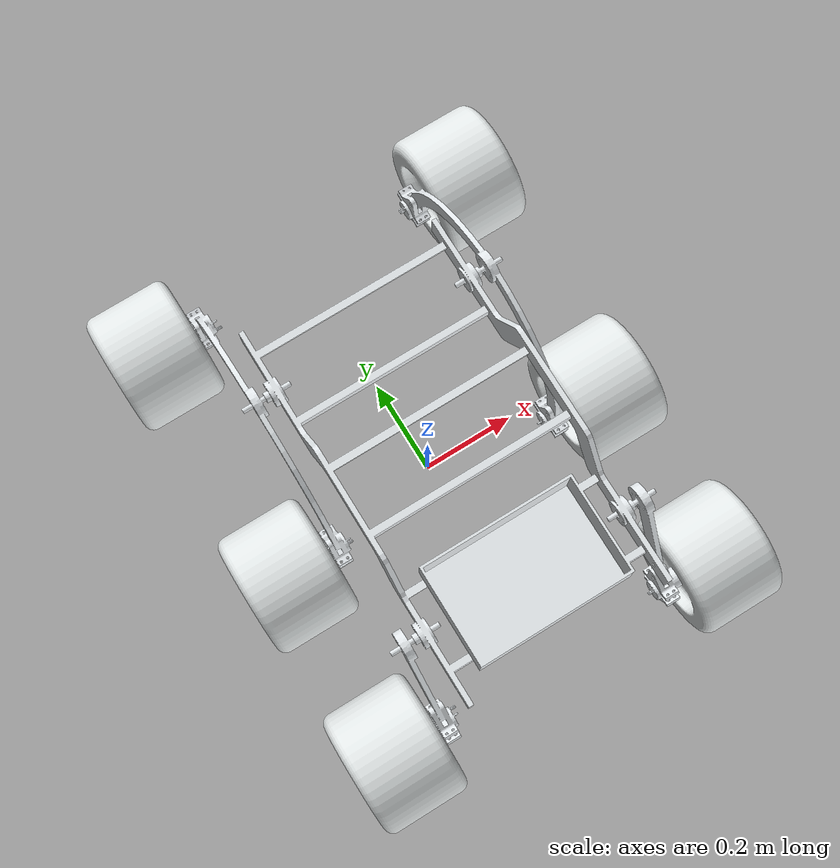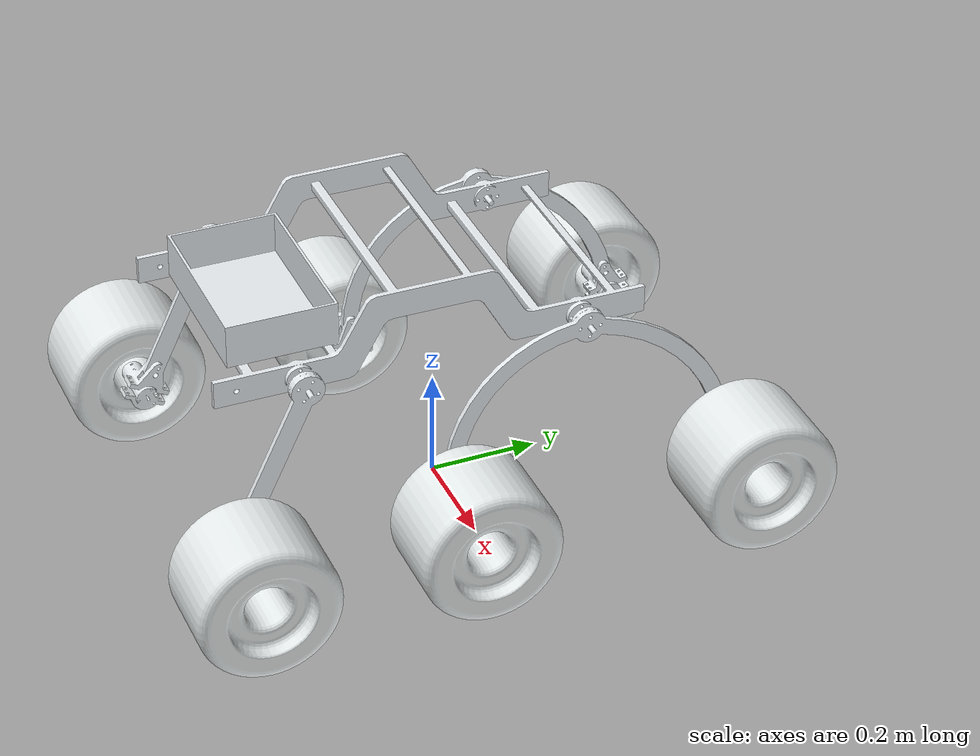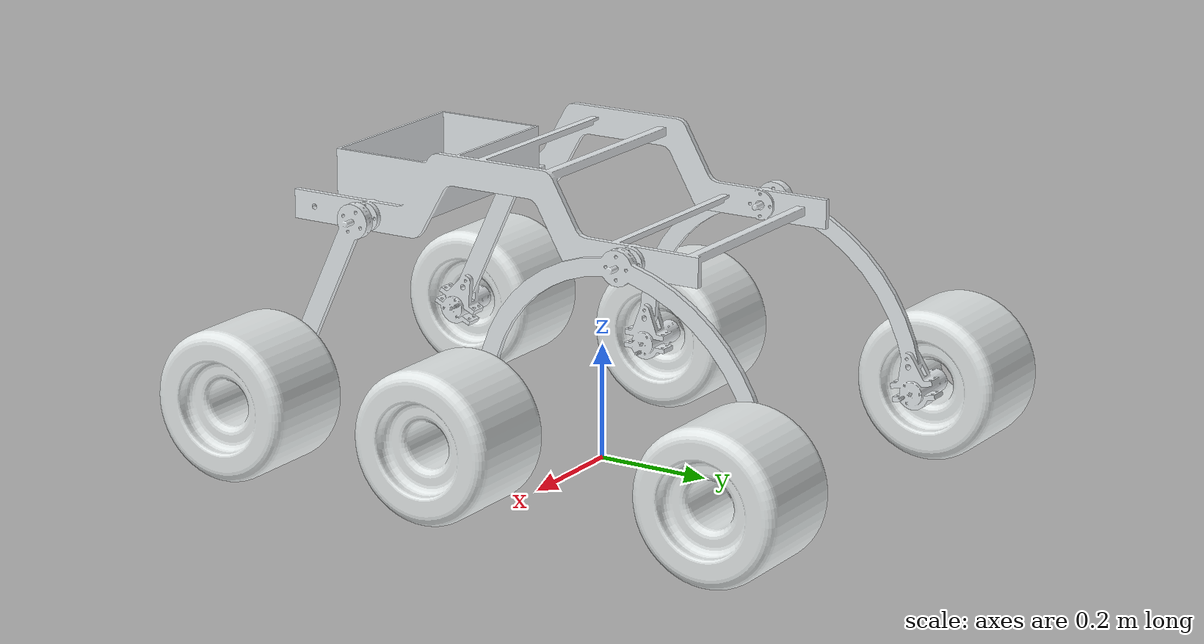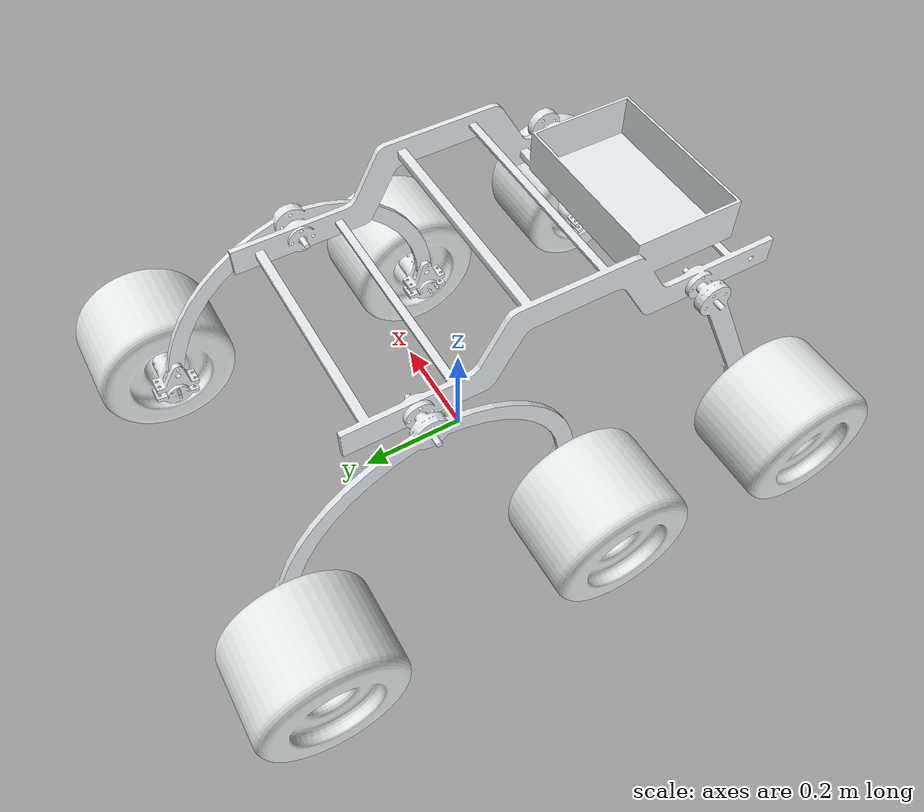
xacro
<?xml version="1.0" ?>
<!-- |    This document was autogenerated by xacro from robot6.urdf                    | -->
<!-- |    EDITING THIS FILE BY HAND IS NOT RECOMMENDED                                 | -->
<!-- |    This document was autogenerated by xacro from robot2.xacro                   | -->
<!-- |    EDITING THIS FILE BY HAND IS NOT RECOMMENDED                                 | -->
<!-- |    This document was autogenerated by xacro from robot2.urdf                    | -->
<!-- |    EDITING THIS FILE BY HAND IS NOT RECOMMENDED                                 | -->
<!-- |    This document was autogenerated by xacro from diff_wheeled_robot.xacro       | -->
<!-- |    EDITING THIS FILE BY HAND IS NOT RECOMMENDED                                 | -->
<robot name="robot1" xmlns:xacro="http://www.ros.org/wiki/xacro">
  <link name="base_link">
    <inertial>
      <origin rpy="0 0 0" xyz="-0.000800600263010614 -0.11860258145137 0.455394457326262"/>
      <mass value="4.27804006349508"/>
      <inertia ixx="0.223279268967413" ixy="-0.000727461158529111" ixz="-3.35208728745676E-06" iyy="0.142337282720164" iyz="6.97566155290899E-05" izz="0.349709434624979"/>
    </inertial>
    <visual>
      <origin rpy="0 0 0" xyz="0 0 0"/>
      <geometry>
        <mesh filename="package://robot1/meshes/base_link.stl"/>
      </geometry>
      <material name="">
        <color rgba="0.898039215686275 0.917647058823529 0.929411764705882 1"/>
      </material>
    </visual>
    <collision>
      <origin rpy="0 0 0" xyz="0 0 0"/>
      <geometry>
        <mesh filename="package://robot1/meshes/base_link.stl"/>
      </geometry>
    </collision>
  </link>
  <gazebo reference="base_link">
    <material>Gazebo/Grey</material>
  </gazebo>
  <link name="bogie_left">
    <inertial>
      <origin rpy="0 0 0" xyz="0.00360195091703333 -0.156872819581089 -0.0770599329146603"/>
      <mass value="1.54434655072793"/>
      <inertia ixx="0.0238244757958653" ixy="0.00118304598138277" ixz="6.87987185265187E-05" iyy="0.0646733940389408" iyz="-0.00141276494033457" izz="0.0874730986459172"/>
    </inertial>
    <visual>
      <origin rpy="0 0 0" xyz="0 0 0"/>
      <geometry>
        <mesh filename="package://robot1/meshes/bogie_left.stl"/>
      </geometry>
      <material name="">
        <color rgba="0.898039215686275 0.917647058823529 0.929411764705882 1"/>
      </material>
    </visual>
    <collision>
      <origin rpy="0 0 0" xyz="0 0 0"/>
      <geometry>
        <mesh filename="package://robot1/meshes/bogie_left.stl"/>
      </geometry>
    </collision>
  </link>
  <joint name="joint_bogie_left" type="revolute">
    <origin rpy="1.5708 0.0053459 1.5708" xyz="-0.176 0.187 0.42252"/>
    <parent link="base_link"/>
    <child link="bogie_left"/>
    <axis xyz="0 0 1"/>
    <limit effort="1000" lower="0.0" upper="0.0" velocity="0.5"/>
  </joint>
  <gazebo reference="bogie_left">
    <material>Gazebo/FlatBlack</material>
  </gazebo>
  <link name="L4">
    <inertial>
      <origin rpy="0 0 0" xyz="-0.0908549897031922 3.60822483003176E-16 -1.88737914186277E-15"/>
      <mass value="9.18939845373489"/>
      <inertia ixx="0.087465651826933" ixy="-4.08851490219851E-18" ixz="1.11550622041014E-17" iyy="0.065169129886498" iyz="-1.73472347597681E-18" izz="0.065169129886498"/>
    </inertial>
    <visual>
      <origin rpy="0 0 0" xyz="0 0 0"/>
      <geometry>
        <mesh filename="package://robot1/meshes/L4.stl"/>
      </geometry>
      <material name="">
        <color rgba="0.901960784313726 0.92156862745098 0.92156862745098 1"/>
      </material>
    </visual>
    <collision>
      <origin rpy="0 0 0" xyz="0 0 0"/>
      <geometry>
        <mesh filename="package://robot1/meshes/L4.stl"/>
      </geometry>
    </collision>
  </link>
  <joint name="JL4" type="continuous">
    <origin rpy="3.1051 -1.5708 0" xyz="0.27464 -0.2922 -0.0935"/>
    <parent link="bogie_left"/>
    <child link="L4"/>
    <axis xyz="1 0 0"/>
  </joint>
  <gazebo reference="L4">
    <material>Gazebo/Gold</material>
    <mu1>0.63</mu1>
    <mu2>0.65</mu2>
  </gazebo>
  <link name="L5">
    <inertial>
      <origin rpy="0 0 0" xyz="-0.0908549897031924 -8.32667268468867E-17 4.02455846426619E-16"/>
      <mass value="9.1893984537349"/>
      <inertia ixx="0.0874656518269331" ixy="1.00230329151726E-17" ixz="-3.70112437785572E-17" iyy="0.0651691298864981" iyz="-3.46944695195361E-18" izz="0.065169129886498"/>
    </inertial>
    <visual>
      <origin rpy="0 0 0" xyz="0 0 0"/>
      <geometry>
        <mesh filename="package://robot1/meshes/L5.stl"/>
      </geometry>
      <material name="">
        <color rgba="0.901960784313726 0.92156862745098 0.92156862745098 1"/>
      </material>
    </visual>
    <collision>
      <origin rpy="0 0 0" xyz="0 0 0"/>
      <geometry>
        <mesh filename="package://robot1/meshes/L5.stl"/>
      </geometry>
    </collision>
  </link>
  <joint name="JL5" type="continuous">
    <origin rpy="2.32070664954404 -1.5707963267949 0" xyz="-0.250000000000006 -0.294999999999997 -0.0934999999999989"/>
    <parent link="bogie_left"/>
    <child link="L5"/>
    <axis xyz="1 0 0"/>
  </joint>
  <gazebo reference="L5">
    <material>Gazebo/Gold</material>
    <mu1>0.63</mu1>
    <mu2>0.65</mu2>
  </gazebo>
  <link name="bogie_right">
    <inertial>
      <origin rpy="0 0 0" xyz="0.00360214216196861 -0.156870111138069 0.0770599329146586"/>
      <mass value="1.54434655072793"/>
      <inertia ixx="0.0238233321963649" ixy="0.00118302614130608" ixz="-6.87926449457258E-05" iyy="0.064674524018448" iyz="0.00141287125414032" izz="0.0874730850259239"/>
    </inertial>
    <visual>
      <origin rpy="0 0 0" xyz="0 0 0"/>
      <geometry>
        <mesh filename="package://robot1/meshes/bogie_right.stl"/>
      </geometry>
      <material name="">
        <color rgba="0.898039215686275 0.917647058823529 0.929411764705882 1"/>
      </material>
    </visual>
    <collision>
      <origin rpy="0 0 0" xyz="0 0 0"/>
      <geometry>
        <mesh filename="package://robot1/meshes/bogie_right.stl"/>
      </geometry>
    </collision>
  </link>
  <joint name="joint_bogie_right" type="revolute">
    <origin rpy="1.5707963267949 0.00534585802001355 1.5707963267949" xyz="0.176000000000001 0.186999999999997 0.422517935490554"/>
    <parent link="base_link"/>
    <child link="bogie_right"/>
    <axis xyz="0 0 1"/>
    <limit effort="1000" lower="0.0" upper="0.0" velocity="0.5"/>
  </joint>
  <gazebo reference="bogie_right">
    <material>Gazebo/FlatBlack</material>
  </gazebo>
  <link name="L1">
    <inertial>
      <origin rpy="0 0 0" xyz="-0.0908549897031924 -5.55111512312578E-17 3.19189119579733E-16"/>
      <mass value="9.1893984537349"/>
      <inertia ixx="0.0874656518269331" ixy="-1.03077238180713E-17" ixz="-1.14137439644496E-17" iyy="0.0651691298864981" iyz="1.73472347597681E-18" izz="0.0651691298864981"/>
    </inertial>
    <visual>
      <origin rpy="0 0 0" xyz="0 0 0"/>
      <geometry>
        <mesh filename="package://robot1/meshes/L1.stl"/>
      </geometry>
      <material name="">
        <color rgba="0.901960784313726 0.92156862745098 0.92156862745098 1"/>
      </material>
    </visual>
    <collision>
      <origin rpy="0 0 0" xyz="0 0 0"/>
      <geometry>
        <mesh filename="package://robot1/meshes/L1.stl"/>
      </geometry>
    </collision>
  </link>
  <joint name="JL1" type="continuous">
    <origin rpy="2.08268339662107 1.5707963267949 0" xyz="0.274642857142856 -0.29219530705668 0.0934999999999976"/>
    <parent link="bogie_right"/>
    <child link="L1"/>
    <axis xyz="-1 0 0"/>
  </joint>
  <gazebo reference="L1">
    <material>Gazebo/Gold</material>
    <mu1>0.63</mu1>
    <mu2>0.65</mu2>
  </gazebo>
  <link name="L2">
    <inertial>
      <origin rpy="0 0 0" xyz="-0.0908549897031922 -1.38777878078145E-16 2.77555756156289E-16"/>
      <mass value="9.1893984537349"/>
      <inertia ixx="0.0874656518269331" ixy="3.62512052091338E-18" ixz="-3.21631798919473E-18" iyy="0.065169129886498" iyz="1.95156391047391E-18" izz="0.0651691298864981"/>
    </inertial>
    <visual>
      <origin rpy="0 0 0" xyz="0 0 0"/>
      <geometry>
        <mesh filename="package://robot1/meshes/L2.stl"/>
      </geometry>
      <material name="">
        <color rgba="0.901960784313726 0.92156862745098 0.92156862745098 1"/>
      </material>
    </visual>
    <collision>
      <origin rpy="0 0 0" xyz="0 0 0"/>
      <geometry>
        <mesh filename="package://robot1/meshes/L2.stl"/>
      </geometry>
    </collision>
  </link>
  <joint name="JL2" type="continuous">
    <origin rpy="3.1002455838996 1.5707963267949 0" xyz="-0.250000000000001 -0.294999999999998 0.0934999999999983"/>
    <parent link="bogie_right"/>
    <child link="L2"/>
    <axis xyz="-1 0 0"/>
  </joint>
  <gazebo reference="L2">
    <material>Gazebo/Gold</material>
    <mu1>0.63</mu1>
    <mu2>0.65</mu2>
  </gazebo>
  <link name="rocker_right">
    <inertial>
      <origin rpy="0 0 0" xyz="-0.160266506545842 3.20657719737882E-06 0.0749142147807074"/>
      <mass value="0.87054039948277"/>
      <inertia ixx="0.000476171150560712" ixy="3.92996260154566E-07" ixz="0.00107017406787956" iyy="0.0173103173691872" iyz="8.50319051005606E-09" izz="0.0171520395788801"/>
    </inertial>
    <visual>
      <origin rpy="0 0 0" xyz="0 0 0"/>
      <geometry>
        <mesh filename="package://robot1/meshes/rocker_right.stl"/>
      </geometry>
      <material name="">
        <color rgba="0.898039215686275 0.917647058823529 0.929411764705882 1"/>
      </material>
    </visual>
    <collision>
      <origin rpy="0 0 0" xyz="0 0 0"/>
      <geometry>
        <mesh filename="package://robot1/meshes/rocker_right.stl"/>
      </geometry>
    </collision>
  </link>
  <joint name="joint_rocker_right" type="fixed">
    <origin rpy="1.5708 -1.128 1.5708" xyz="0.176 -0.325 0.42252"/>
    <parent link="base_link"/>
    <child link="rocker_right"/>
    <axis xyz="1 0 0"/>
    <limit effort="1000" lower="0.3" upper="-1.41" velocity="0.5"/>
  </joint>
  <gazebo reference="rocker_right">
    <material>Gazebo/FlatBlack</material>
  </gazebo>
  <link name="L3">
    <inertial>
      <origin rpy="0 0 0" xyz="-0.0908549897031921 5.55111512312578E-17 2.22044604925031E-16"/>
      <mass value="9.18939845373489"/>
      <inertia ixx="0.0874656518269331" ixy="2.04857662106961E-18" ixz="-7.21103695768604E-19" iyy="0.065169129886498" iyz="1.73472347597681E-18" izz="0.065169129886498"/>
    </inertial>
    <visual>
      <origin rpy="0 0 0" xyz="0 0 0"/>
      <geometry>
        <mesh filename="package://robot1/meshes/L3.stl"/>
      </geometry>
      <material name="">
        <color rgba="0.901960784313726 0.92156862745098 0.92156862745098 1"/>
      </material>
    </visual>
    <collision>
      <origin rpy="0 0 0" xyz="0 0 0"/>
      <geometry>
        <mesh filename="package://robot1/meshes/L3.stl"/>
      </geometry>
    </collision>
  </link>
  <joint name="JL3" type="continuous">
    <origin rpy="1.02773942730628 1.5707963267949 0" xyz="-0.32500000000001 0 0.0935000000000011"/>
    <parent link="rocker_right"/>
    <child link="L3"/>
    <axis xyz="-1 0 0"/>
  </joint>
  <gazebo reference="L3">
    <material>Gazebo/Gold</material>
    <mu1>0.63</mu1>
    <mu2>0.65</mu2>
  </gazebo>
  <link name="rocker_left">
    <inertial>
      <origin rpy="0 0 0" xyz="-0.160266603892046 1.23013324715426E-06 -0.0749142147807064"/>
      <mass value="0.87054039948277"/>
      <inertia ixx="0.000476173012417757" ixy="1.28337652397967E-07" ixz="-0.00107017307922966" iyy="0.0173103434352455" iyz="1.15696080347409E-08" izz="0.0171520675067954"/>
    </inertial>
    <visual>
      <origin rpy="0 0 0" xyz="0 0 0"/>
      <geometry>
        <mesh filename="package://robot1/meshes/rocker_left.stl"/>
      </geometry>
      <material name="">
        <color rgba="0.898039215686275 0.917647058823529 0.929411764705882 1"/>
      </material>
    </visual>
    <collision>
      <origin rpy="0 0 0" xyz="0 0 0"/>
      <geometry>
        <mesh filename="package://robot1/meshes/rocker_left.stl"/>
      </geometry>
    </collision>
  </link>
  <joint name="joint_rocker_left" type="fixed">
    <origin rpy="1.5707963267949 -1.12802356646369 1.5707963267949" xyz="-0.176000000000002 -0.325 0.422517935490558"/>
    <parent link="base_link"/>
    <child link="rocker_left"/>
    <axis xyz="1 0 0"/>
    <limit effort="1000" lower="0.3" upper="-1.41" velocity="0.5"/>
  </joint>
  <gazebo reference="rocker_left">
    <material>Gazebo/FlatBlack</material>
  </gazebo>
  <link name="L6">
    <inertial>
      <origin rpy="0 0 0" xyz="-0.0908549897031923 2.77555756156289E-17 3.88578058618805E-16"/>
      <mass value="9.18939845373489"/>
      <inertia ixx="0.087465651826933" ixy="-5.19487396286121E-18" ixz="-1.55243062501977E-17" iyy="0.065169129886498" iyz="5.33969569949111E-18" izz="0.065169129886498"/>
    </inertial>
    <visual>
      <origin rpy="0 0 0" xyz="0 0 0"/>
      <geometry>
        <mesh filename="package://robot1/meshes/L6.stl"/>
      </geometry>
      <material name="">
        <color rgba="0.901960784313726 0.92156862745098 0.92156862745098 1"/>
      </material>
    </visual>
    <collision>
      <origin rpy="0 0 0" xyz="0 0 0"/>
      <geometry>
        <mesh filename="package://robot1/meshes/L6.stl"/>
      </geometry>
    </collision>
  </link>
  <joint name="JL6" type="continuous">
    <origin rpy="1.12616631715067 -1.5707963267949 0" xyz="-0.325 0 -0.0934999999999984"/>
    <parent link="rocker_left"/>
    <child link="L6"/>
    <axis xyz="1 0 0"/>
  </joint>
  <gazebo reference="L6">
    <material>Gazebo/Gold</material>
    <mu1>0.63</mu1>
    <mu2>0.65</mu2>
  </gazebo>
  <gazebo>
  <plugin name="skid_steer_drive_controller" filename="libgazebo_ros_skid_steer_drive.so">
    <updateRate>100.0</updateRate>
    <robotNamespace>/</robotNamespace>
    <leftFrontJoint>JL4</leftFrontJoint>
    <rightFrontJoint>JL1</rightFrontJoint>
    <leftRearJoint>JL6</leftRearJoint>
    <rightRearJoint>JL3</rightRearJoint>
    <rightMiddleJoint>JL2</rightMiddleJoint>
    <leftMiddleJoint>JL5</leftMiddleJoint>
    <wheelSeparation>0.7</wheelSeparation>
    <wheelDiameter>0.3</wheelDiameter>
    <robotBaseFrame>base_link</robotBaseFrame>
    <torque>100</torque>
    <topicName>cmd_vel</topicName>
    <broadcastTF>true</broadcastTF>
  </plugin>
</gazebo>
</robot>
